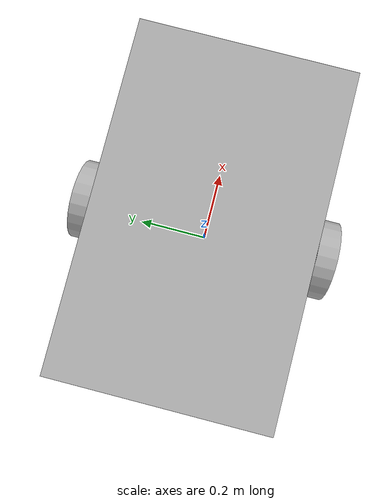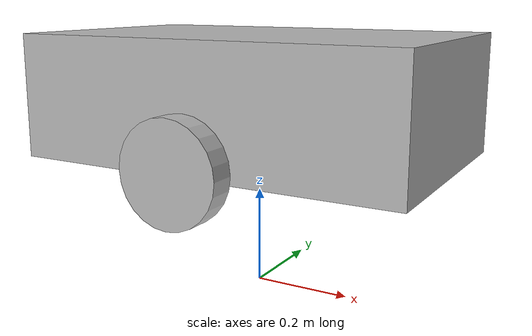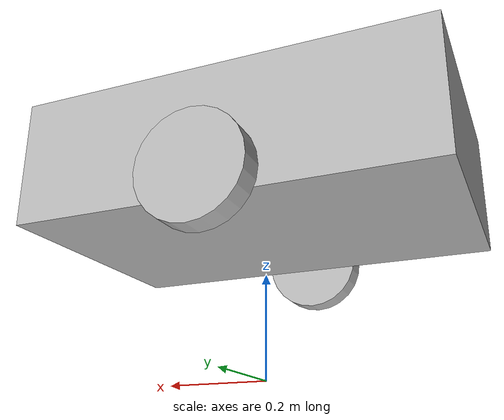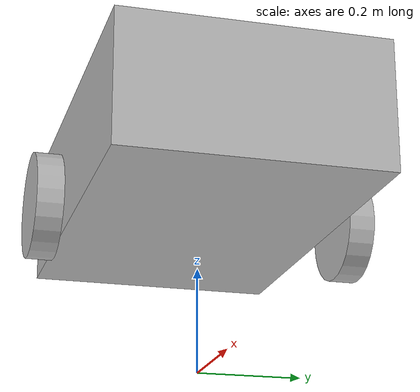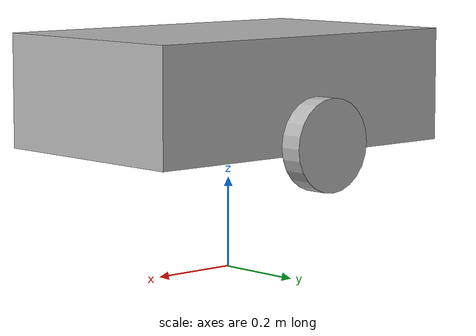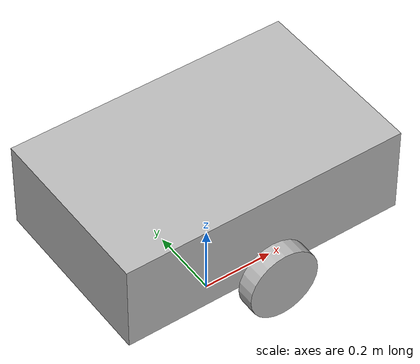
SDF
<?xml version="1.0"?>
<sdf version="1.9">
  <model name="vehicle_model">
    <pose>0 0 0.2 0 0 0</pose>

    <link name="chassis">
      <pose>0 0 0.2 0 0 0</pose>
      <inertial>
        <mass>20.0</mass>
        <inertia>
          <ixx>0.8</ixx>
          <iyy>1.2</iyy>
          <izz>1.2</izz>
        </inertia>
      </inertial>

      <collision name="collision">
        <geometry>
          <box>
            <size>0.8 0.5 0.25</size>
          </box>
        </geometry>
      </collision>

      <visual name="visual">
        <geometry>
          <box>
            <size>0.8 0.5 0.25</size>
          </box>
        </geometry>
      </visual>

      <sensor name="front_camera" type="camera">
        <pose>0.35 0 0.10 0 0 0</pose>
        <update_rate>20</update_rate>
        <camera>
          <horizontal_fov>1.3962634</horizontal_fov>
          <image>
            <width>640</width>
            <height>480</height>
            <format>R8G8B8</format>
          </image>
          <clip>
            <near>0.1</near>
            <far>100</far>
          </clip>
        </camera>
        <topic>/camera</topic>
        <always_on>true</always_on>
        <visualize>true</visualize>
      </sensor>

      <sensor name="front_lidar" type="gpu_lidar">
        <pose>0.30 0 0.12 0 0 0</pose>
        <update_rate>10</update_rate>
        <topic>/scan</topic>
        <ray>
          <scan>
            <horizontal>
              <samples>640</samples>
              <resolution>1</resolution>
              <min_angle>-1.5707</min_angle>
              <max_angle>1.5707</max_angle>
            </horizontal>
          </scan>
          <range>
            <min>0.10</min>
            <max>20.0</max>
            <resolution>0.01</resolution>
          </range>
        </ray>
        <always_on>true</always_on>
        <visualize>true</visualize>
      </sensor>
    </link>

    <link name="left_wheel">
      <pose>0 0.30 0.10 1.5707 0 0</pose>
      <inertial>
        <mass>1.0</mass>
        <inertia>
          <ixx>0.01</ixx>
          <iyy>0.01</iyy>
          <izz>0.01</izz>
        </inertia>
      </inertial>
      <collision name="collision">
        <geometry>
          <cylinder>
            <radius>0.10</radius>
            <length>0.05</length>
          </cylinder>
        </geometry>
      </collision>
      <visual name="visual">
        <geometry>
          <cylinder>
            <radius>0.10</radius>
            <length>0.05</length>
          </cylinder>
        </geometry>
      </visual>
    </link>

    <link name="right_wheel">
      <pose>0 -0.30 0.10 1.5707 0 0</pose>
      <inertial>
        <mass>1.0</mass>
        <inertia>
          <ixx>0.01</ixx>
          <iyy>0.01</iyy>
          <izz>0.01</izz>
        </inertia>
      </inertial>
      <collision name="collision">
        <geometry>
          <cylinder>
            <radius>0.10</radius>
            <length>0.05</length>
          </cylinder>
        </geometry>
      </collision>
      <visual name="visual">
        <geometry>
          <cylinder>
            <radius>0.10</radius>
            <length>0.05</length>
          </cylinder>
        </geometry>
      </visual>
    </link>

    <joint name="left_wheel_joint" type="revolute">
      <parent>chassis</parent>
      <child>left_wheel</child>
      <axis>
        <xyz>0 1 0</xyz>
        <limit>
          <lower>-1e16</lower>
          <upper>1e16</upper>
        </limit>
      </axis>
    </joint>

    <joint name="right_wheel_joint" type="revolute">
      <parent>chassis</parent>
      <child>right_wheel</child>
      <axis>
        <xyz>0 1 0</xyz>
        <limit>
          <lower>-1e16</lower>
          <upper>1e16</upper>
        </limit>
      </axis>
    </joint>

    <plugin
      filename="gz-sim-diff-drive-system"
      name="gz::sim::systems::DiffDrive">
      <left_joint>left_wheel_joint</left_joint>
      <right_joint>right_wheel_joint</right_joint>
      <wheel_separation>0.60</wheel_separation>
      <wheel_radius>0.10</wheel_radius>
      <topic>/cmd_vel</topic>
      <odom_topic>/odom</odom_topic>
      <frame_id>odom</frame_id>
      <child_frame_id>base_link</child_frame_id>
      <max_linear_acceleration>1.5</max_linear_acceleration>
      <max_angular_acceleration>2.0</max_angular_acceleration>
    </plugin>
  </model>
</sdf>
